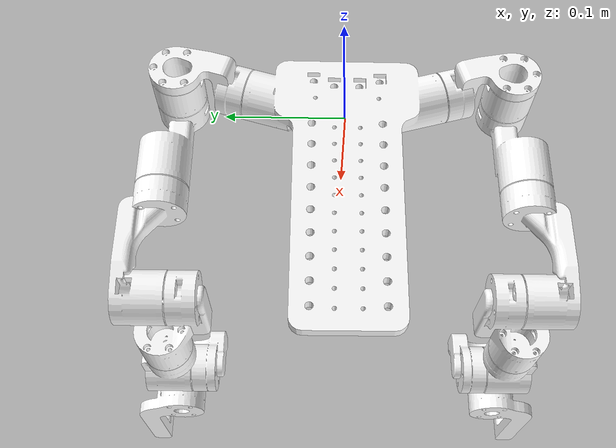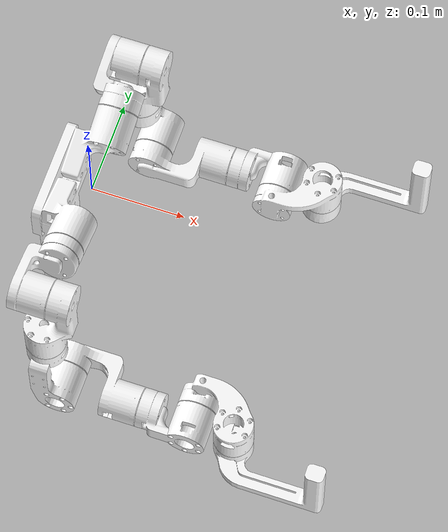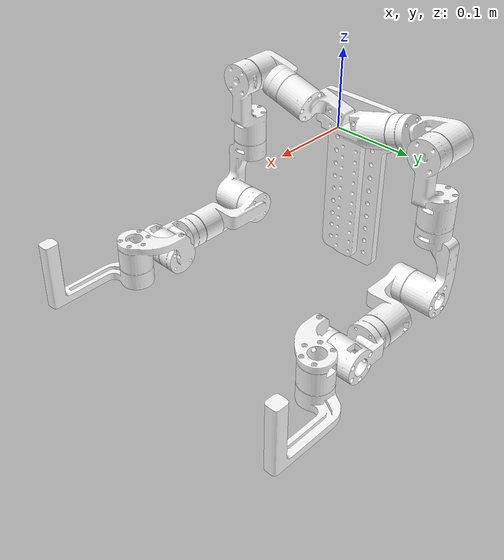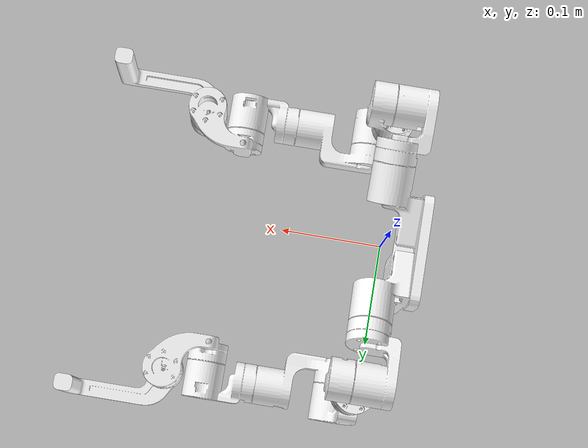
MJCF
<mujoco model="G1">
  <compiler angle="radian"/>

  <asset>
    <mesh name="base_link" file="meshes/base_link.STL"/>
    <mesh name="ll1" file="meshes/ll1.STL"/>
    <mesh name="ll2" file="meshes/ll2.STL"/>
    <mesh name="ll3" file="meshes/ll3.STL"/>
    <mesh name="ll4" file="meshes/ll4.STL"/>
    <mesh name="ll5" file="meshes/ll5.STL"/>
    <mesh name="ll6" file="meshes/ll6.STL"/>
    <mesh name="ll7" file="meshes/ll7.STL"/>
    <mesh name="rl1" file="meshes/rl1.STL"/>
    <mesh name="rl2" file="meshes/rl2.STL"/>
    <mesh name="rl3" file="meshes/rl3.STL"/>
    <mesh name="rl4" file="meshes/rl4.STL"/>
    <mesh name="rl5" file="meshes/rl5.STL"/>
    <mesh name="rl6" file="meshes/rl6.STL"/>
    <mesh name="rl7" file="meshes/rl7.STL"/>
  </asset>

  <worldbody>
    <body name="BASE" pos="0 0 0" quat="1 0 0 0">
    <joint name="floating_base_joint" type="free" limited="false" actuatorfrclimited="false"/>
    <geom type="mesh" rgba="1 1 1 1" mesh="base_link"/>
    <body name="ll1" pos="0 0.082178 0.023564" quat="0.564729 -0.425536 -0.425534 -0.564731">
      <inertial pos="-0.00683857 -0.00760062 0.0356956" quat="0.737971 0.0926788 -0.316223 0.588908" mass="0.074722" diaginertia="2.92466e-05 2.64685e-05 1.5556e-05"/>
      <joint name="lj1" pos="0 0 0" axis="0 0 1"/>
      <geom type="mesh" rgba="1 1 1 1" mesh="ll1"/>
      <body name="ll2" pos="-0.013831 0.009 0.056483" quat="-0.0984121 0.0984066 -0.700227 -0.700224">
        <inertial pos="0.0426643 0.00335833 0.00195675" quat="0.0153791 0.819645 0.110573 0.561889" mass="0.0802646" diaginertia="4.2423e-05 4.02991e-05 1.71232e-05"/>
        <joint name="lj2" pos="0 0 0" axis="0 0 1"/>
        <geom type="mesh" rgba="1 1 1 1" mesh="ll2"/>
        <body name="ll3" pos="0.096 0.00675 -0.009" quat="0.499998 -0.5 0.500002 -0.5">
          <inertial pos="-0.00813645 -0.00681486 0.0512519" quat="0.978445 0.0932047 -0.161619 0.0885248" mass="0.0836531" diaginertia="5.12591e-05 4.84119e-05 1.67651e-05"/>
          <joint name="lj3" pos="0 0 0" axis="0 0 -1"/>
          <geom type="mesh" rgba="1 1 1 1" mesh="ll3"/>
          <body name="ll4" pos="0.011 -0.01578 0.0878" quat="0.000563312 0.707388 -0.000562864 0.706825">
            <inertial pos="0.00766611 0.0628075 -0.0294342" quat="0.0343313 0.711017 0.0573579 0.69999" mass="0.187099" diaginertia="0.000224941 0.000166914 9.42823e-05"/>
            <joint name="lj4" pos="0 0 0" axis="0 0 -1"/>
            <geom type="mesh" rgba="1 1 1 1" mesh="ll4"/>
            <body name="ll5" pos="0.01 0.086 -0.013" quat="-2.59734e-06 -2.59735e-06 0.707108 0.707105">
              <inertial pos="-0.000165239 -0.00261491 0.0359689" quat="0.683937 0.139165 -0.164159 0.697077" mass="0.0700036" diaginertia="2.47968e-05 2.14462e-05 1.42914e-05"/>
              <joint name="lj5" pos="0 0 0" axis="0 0 1"/>
              <geom type="mesh" rgba="1 1 1 1" mesh="ll5"/>
              <body name="ll6" pos="0 0.016 0.0568" quat="0.500198 -0.5002 0.4998 0.499802">
                <inertial pos="-0.024677 -0.0103039 -0.000889487" quat="0.317954 0.352197 0.382093 0.793012" mass="0.075765" diaginertia="3.94874e-05 3.86145e-05 1.53133e-05"/>
                <joint name="lj6" pos="0 0 0" axis="0 0 -1"/>
                <geom type="mesh" rgba="1 1 1 1" mesh="ll6"/>
                <body name="ll7" pos="-0.046 0.006 -0.016" quat="-2.59734e-06 -2.59735e-06 0.707108 0.707105">
                  <inertial pos="0.0501035 -0.0207212 -0.000893441" quat="0.398128 0.701636 0.46819 0.360554" mass="0.0739845" diaginertia="0.000164858 0.00014925 3.18554e-05"/>
                  <joint name="lj7" pos="0 0 0" axis="0 0 -1"/>
                  <geom type="mesh" rgba="1 1 1 1" mesh="ll7"/>
                </body>
              </body>
            </body>
          </body>
        </body>
      </body>
    </body>
    <body name="rl1" pos="0 -0.082178 0.023564" quat="0.564729 0.425536 0.425534 -0.564731">
      <inertial pos="0.00683467 -0.00759986 0.0356982" quat="0.58916 0.316383 -0.0925146 0.737721" mass="0.0747186" diaginertia="2.92447e-05 2.64731e-05 1.5554e-05"/>
      <joint name="rj1" pos="0 0 0" axis="0 0 -1"/>
      <geom type="mesh" rgba="1 1 1 1" mesh="rl1"/>
      <body name="rl2" pos="0.013831 0.009 0.056483" quat="0.0983429 -0.0984756 -0.699771 -0.700679">
        <inertial pos="-0.0426643 0.00335578 0.00196106" quat="0.110216 0.561961 0.0148572 0.819654" mass="0.0802643" diaginertia="4.24229e-05 4.0299e-05 1.71232e-05"/>
        <joint name="rj2" pos="0 0 0" axis="0 0 1"/>
        <geom type="mesh" rgba="1 1 1 1" mesh="rl2"/>
        <body name="rl3" pos="-0.096 0.0067615 -0.0089914" quat="0.500318 -0.49968 -0.500321 0.49968">
          <inertial pos="0.00813646 -0.00681482 0.0512518" quat="0.978446 0.093205 0.161619 -0.0885232" mass="0.0836535" diaginertia="5.12591e-05 4.84119e-05 1.67651e-05"/>
          <joint name="rj3" pos="0 0 0" axis="0 0 -1"/>
          <geom type="mesh" rgba="1 1 1 1" mesh="rl3"/>
          <body name="rl4" pos="-0.011 -0.01578 0.0878" quat="-2.59734e-06 0.707105 -2.59735e-06 -0.707108">
            <inertial pos="-0.00454299 0.0363693 0.00185256" quat="0.390924 0.319825 -0.413367 0.757639" mass="0.0800198" diaginertia="3.80714e-05 3.6141e-05 1.84916e-05"/>
            <joint name="rj4" pos="0 0 0" axis="0 0 1"/>
            <geom type="mesh" rgba="1 1 1 1" mesh="rl4"/>
            <body name="rl5" pos="-0.01 0.086 -0.013" quat="-2.59734e-06 -2.59735e-06 0.707108 0.707105">
              <inertial pos="0.000165241 -0.00261486 0.0359689" quat="0.697076 0.16416 -0.139166 0.683936" mass="0.0700033" diaginertia="2.47968e-05 2.14462e-05 1.42914e-05"/>
              <joint name="rj5" pos="0 0 0" axis="0 0 1"/>
              <geom type="mesh" rgba="1 1 1 1" mesh="rl5"/>
              <body name="rl6" pos="0 0.016 0.0568" quat="0.499998 -0.5 -0.5 -0.500002">
                <inertial pos="0.0248108 -0.0104126 -0.000898621" quat="0.384825 0.790751 0.324412 0.348395" mass="0.0753562" diaginertia="3.93978e-05 3.85245e-05 1.52341e-05"/>
                <joint name="rj6" pos="0 0 0" axis="0 0 1"/>
                <geom type="mesh" rgba="1 1 1 1" mesh="rl6"/>
                <body name="rl7" pos="0.046 0.039 -0.016" quat="-2.59734e-06 -2.59735e-06 0.707108 0.707105">
                  <inertial pos="-0.0501035 -0.0207212 -0.0338934" quat="0.46819 0.360554 0.398128 0.701636" mass="0.0739846" diaginertia="0.000164858 0.00014925 3.18554e-05"/>
                  <joint name="rj7" pos="0 0 0" axis="0 0 -1"/>
                  <geom type="mesh" rgba="1 1 1 1" mesh="rl7"/>
                </body>
              </body>
            </body>
          </body>
        </body>
      </body>
    </body>
    </body>
  </worldbody>
</mujoco>
